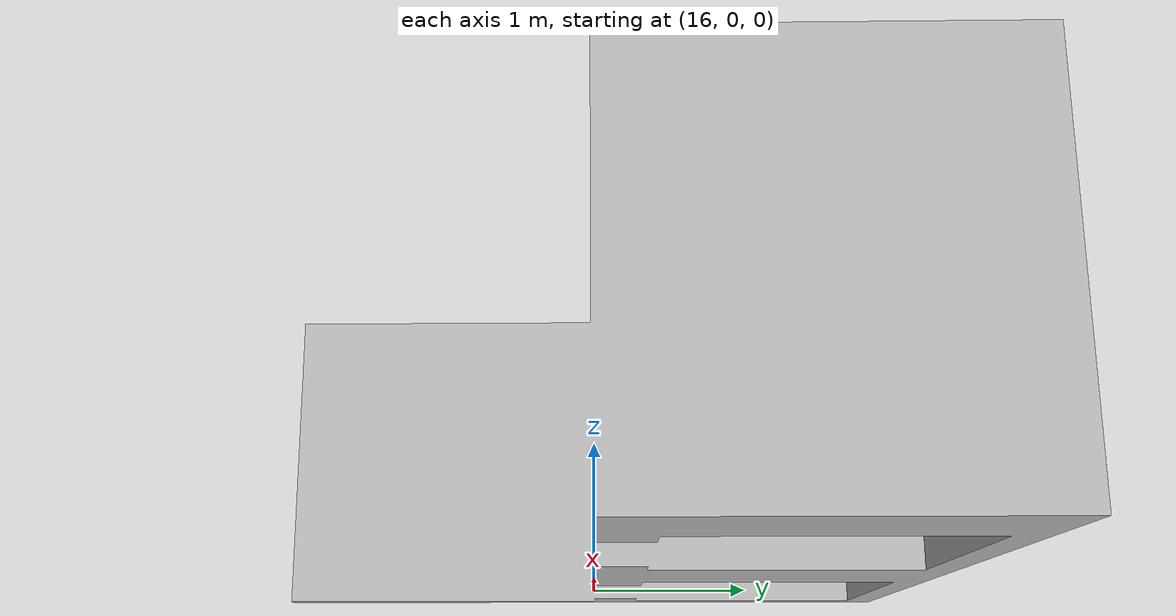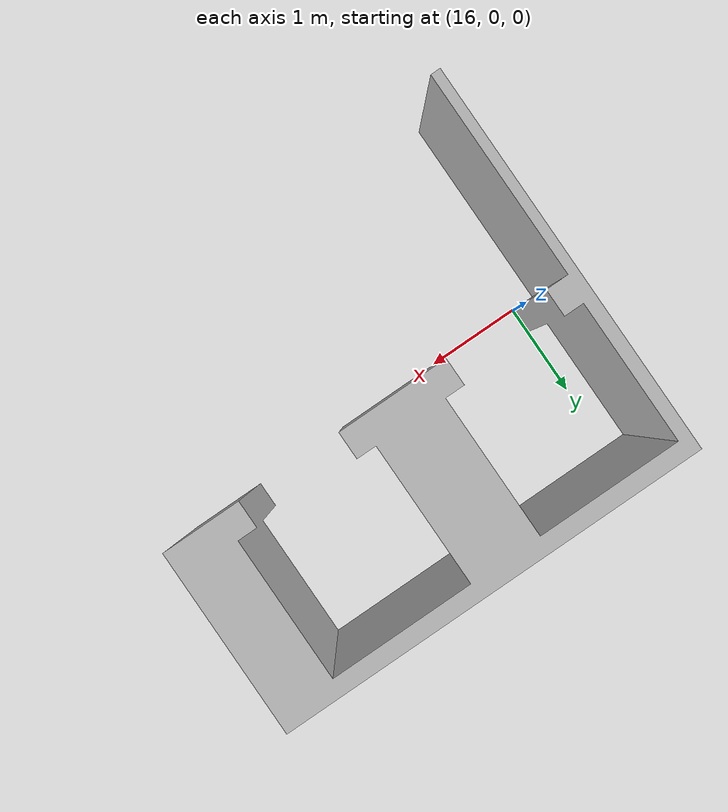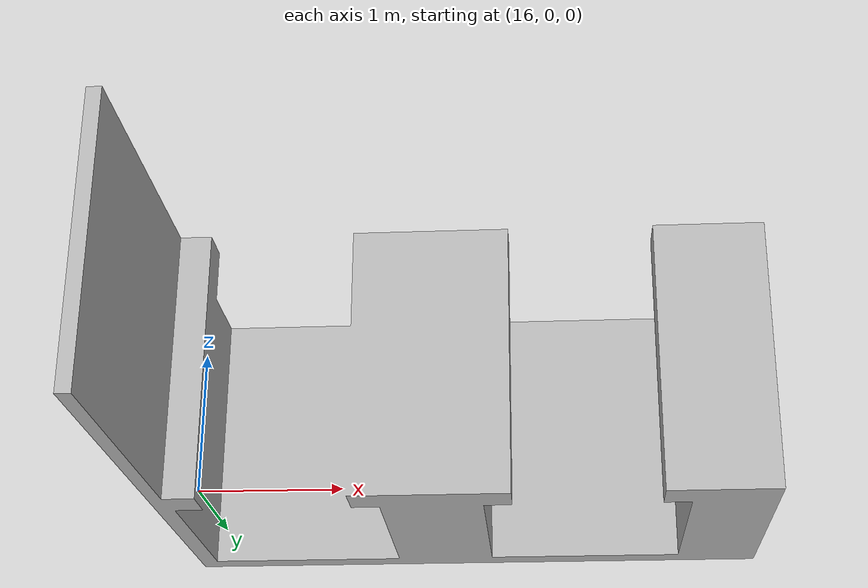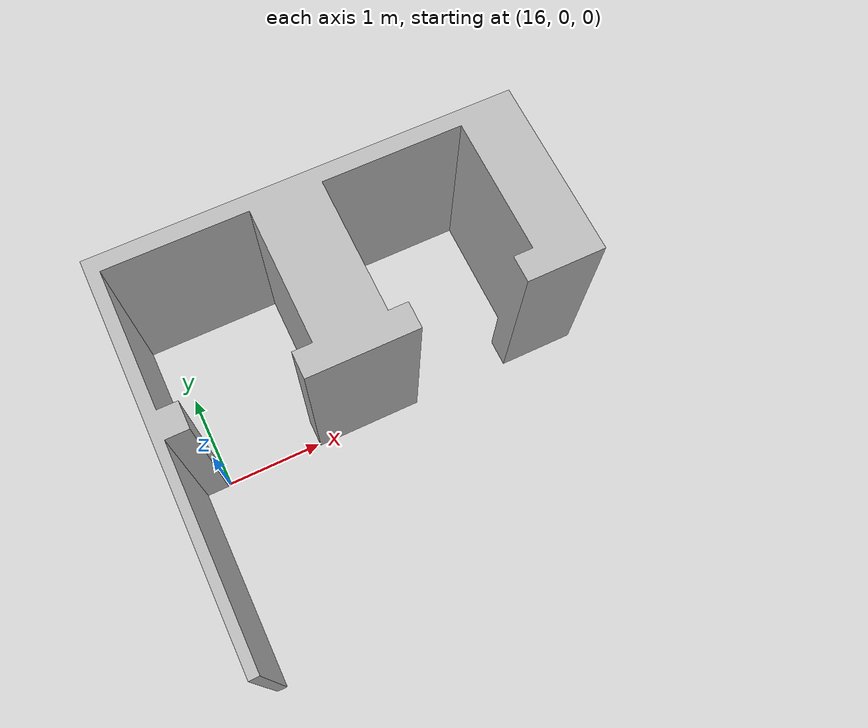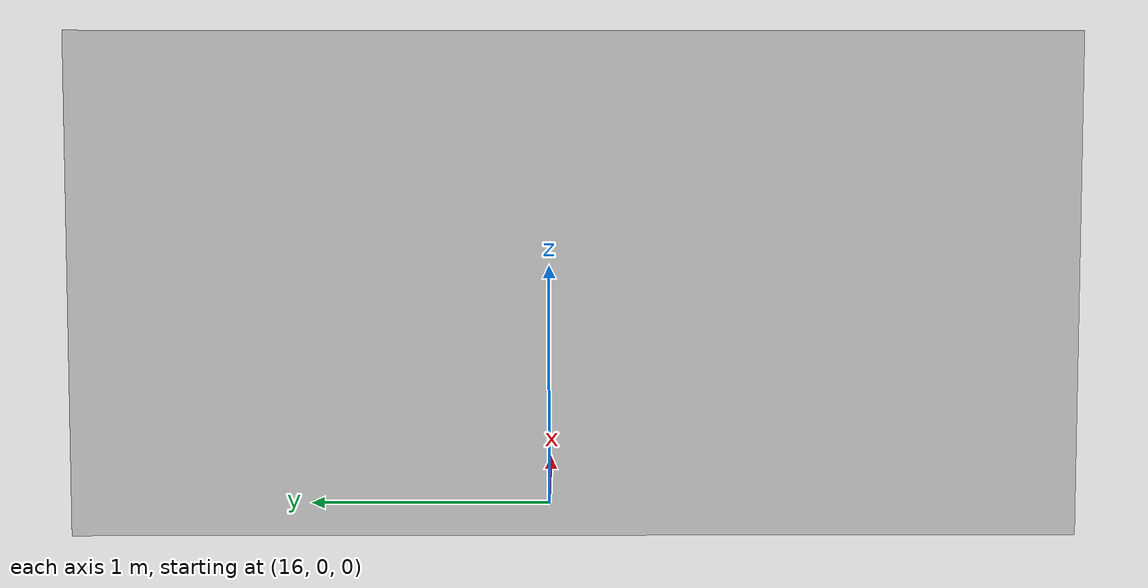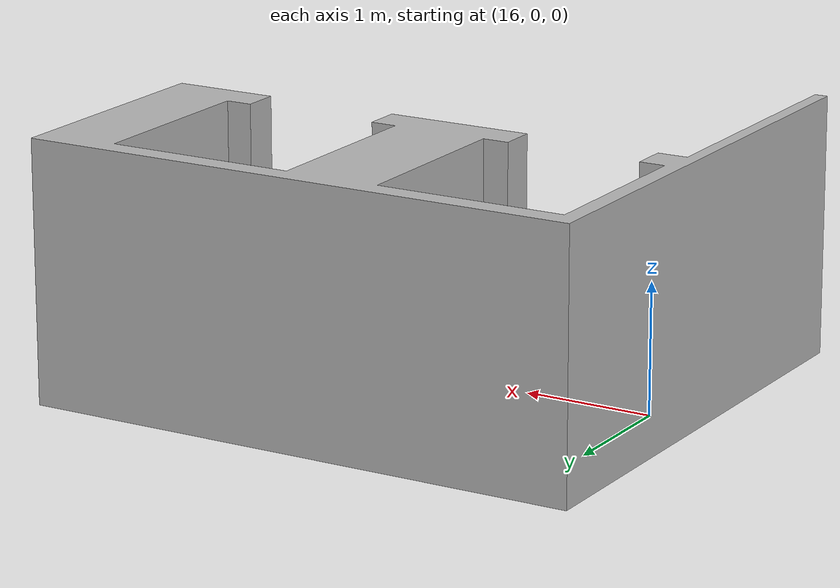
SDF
<?xml version='1.0'?>
<sdf version='1.5'>
  <model name="elevator_oo">
    <static>1</static>

    <link name="link">
      <collision name="collision">
        <pose>20 0 -0.05 0 0 0</pose>
        <geometry>
          <mesh>
            <uri>model://elevator_oo/meshes/both_opened.stl</uri>
            <scale>0.001 0.001 0.001</scale>
          </mesh>
        </geometry>
        <surface>
            <friction>
                <ode>
                    <mu>10000</mu>
                    <mu2>10000</mu2>
                </ode>
            </friction>
        </surface>
      </collision>
      <visual name="visual">
        <pose>20 0 -0.05 0 0 0</pose>
        <geometry>
          <mesh>
            <uri>model://elevator_oo/meshes/both_opened.stl</uri>
            <scale>0.001 0.001 0.001</scale>
          </mesh>
        </geometry>
      </visual>
    </link>
  </model>
</sdf>
